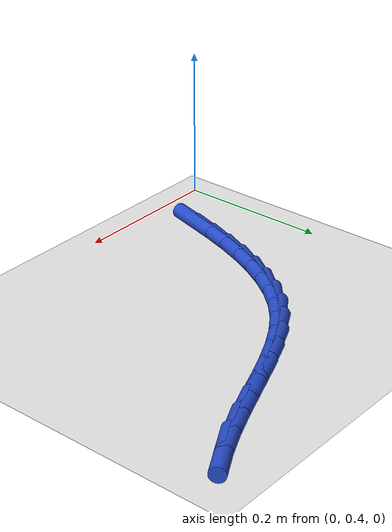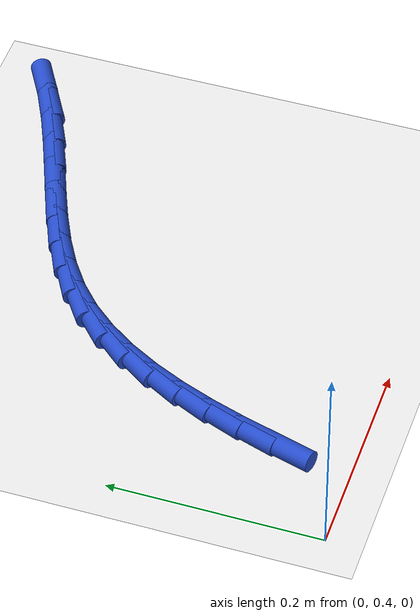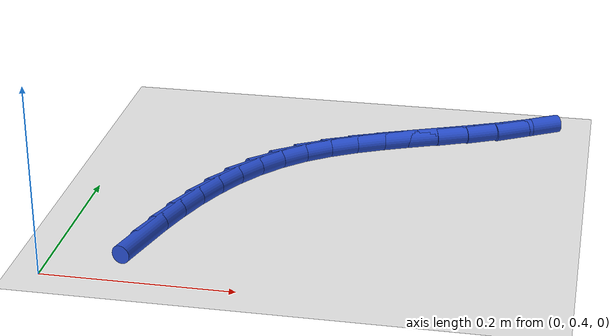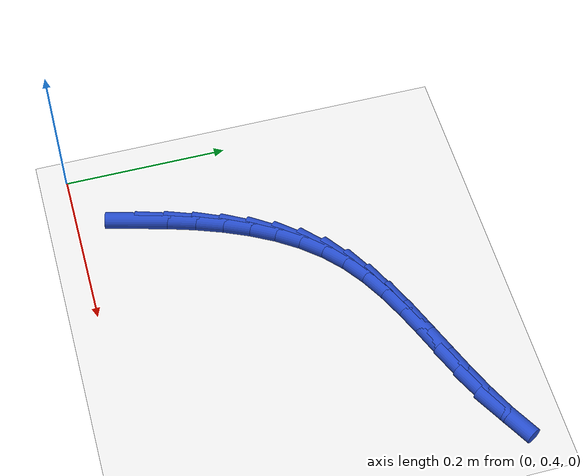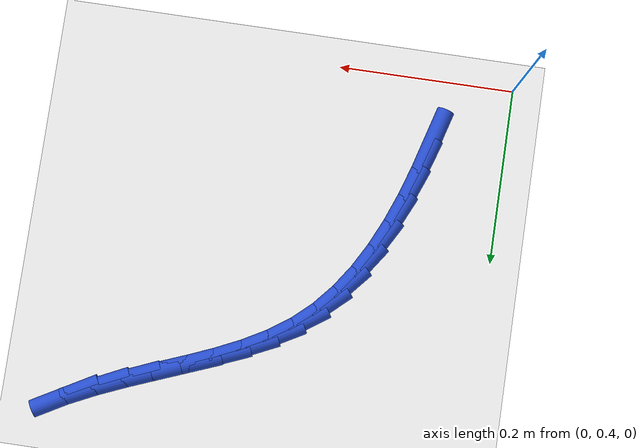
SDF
<sdf version="1.6">
 <world name="default">
  <model name="ground_plane">
   <static>1</static>
   <link name="link">
    <collision name="collision">
     <geometry><plane><normal>0 0 1</normal><size>100 100</size></plane></geometry>
     <surface><friction><ode><mu>100</mu><mu2>50</mu2></ode></friction></surface>
    </collision>
    <visual name="visual">
     <cast_shadows>0</cast_shadows>
     <geometry><plane><normal>0 0 1</normal><size>100 100</size></plane></geometry>
     <material>
      <script><uri>file://media/materials/scripts/gazebo.material</uri><name>Gazebo/WhiteGlow</name></script>
     </material>
    </visual>
   </link>
  </model>
  <model name="line">
   <link name="link_14">
    <pose>0.08461452594688063 0.4737982215466072 0.01 0 1.57 1.2978563678131796</pose>
    <collision name="collision">
     <geometry><cylinder><radius>0.01</radius><length>0.08</length></cylinder></geometry>
    </collision>
    <visual name="visual">
     <material>
      <script><name>Gazebo/Blue</name><uri>file://media/materials/scripts/gazebo.material</uri></script>
     </material>
     <geometry><cylinder><radius>0.01</radius><length>0.08</length></cylinder></geometry>
    </visual>
   </link>
   <link name="link_15">
    <pose>0.09419204224228851 0.5080126954400984 0.01 0 1.57 1.2565573028411883</pose>
    <collision name="collision">
     <geometry><cylinder><radius>0.01</radius><length>0.08</length></cylinder></geometry>
    </collision>
    <visual name="visual">
     <material>
      <script><name>Gazebo/Blue</name><uri>file://media/materials/scripts/gazebo.material</uri></script>
     </material>
     <geometry><cylinder><radius>0.01</radius><length>0.08</length></cylinder></geometry>
    </visual>
   </link>
   <link name="link_16">
    <pose>0.10497827255687715 0.5412002919966886 0.01 0 1.57 1.2042964606648994</pose>
    <collision name="collision">
     <geometry><cylinder><radius>0.01</radius><length>0.08</length></cylinder></geometry>
    </collision>
    <visual name="visual">
     <material>
      <script><name>Gazebo/Blue</name><uri>file://media/materials/scripts/gazebo.material</uri></script>
     </material>
     <geometry><cylinder><radius>0.01</radius><length>0.08</length></cylinder></geometry>
    </visual>
   </link>
   <link name="link_17">
    <pose>0.11720741300711682 0.5730601277220915 0.01 0 1.57 1.1396603528509097</pose>
    <collision name="collision">
     <geometry><cylinder><radius>0.01</radius><length>0.08</length></cylinder></geometry>
    </collision>
    <visual name="visual">
     <material>
      <script><name>Gazebo/Blue</name><uri>file://media/materials/scripts/gazebo.material</uri></script>
     </material>
     <geometry><cylinder><radius>0.01</radius><length>0.08</length></cylinder></geometry>
    </visual>
   </link>
   <link name="link_18">
    <pose>0.13111365970947786 0.6032913191220214 0.01 0 1.57 1.0611525408388207</pose>
    <collision name="collision">
     <geometry><cylinder><radius>0.01</radius><length>0.08</length></cylinder></geometry>
    </collision>
    <visual name="visual">
     <material>
      <script><name>Gazebo/Blue</name><uri>file://media/materials/scripts/gazebo.material</uri></script>
     </material>
     <geometry><cylinder><radius>0.01</radius><length>0.08</length></cylinder></geometry>
    </visual>
   </link>
   <link name="link_19">
    <pose>0.1469312087804306 0.6315929827021914 0.01 0 1.57 0.9674923032002456</pose>
    <collision name="collision">
     <geometry><cylinder><radius>0.01</radius><length>0.08</length></cylinder></geometry>
    </collision>
    <visual name="visual">
     <material>
      <script><name>Gazebo/Blue</name><uri>file://media/materials/scripts/gazebo.material</uri></script>
     </material>
     <geometry><cylinder><radius>0.01</radius><length>0.08</length></cylinder></geometry>
    </visual>
   </link>
   <link name="link_20">
    <pose>0.1648942563364455 0.6576642349683164 0.01 0 1.57 0.8581278723258284</pose>
    <collision name="collision">
     <geometry><cylinder><radius>0.01</radius><length>0.08</length></cylinder></geometry>
    </collision>
    <visual name="visual">
     <material>
      <script><name>Gazebo/Blue</name><uri>file://media/materials/scripts/gazebo.material</uri></script>
     </material>
     <geometry><cylinder><radius>0.01</radius><length>0.08</length></cylinder></geometry>
    </visual>
   </link>
   <link name="link_21">
    <pose>0.18523699849399264 0.6812041924261092 0.01 0 1.57 0.7340215848732757</pose>
    <collision name="collision">
     <geometry><cylinder><radius>0.01</radius><length>0.08</length></cylinder></geometry>
    </collision>
    <visual name="visual">
     <material>
      <script><name>Gazebo/Blue</name><uri>file://media/materials/scripts/gazebo.material</uri></script>
     </material>
     <geometry><cylinder><radius>0.01</radius><length>0.08</length></cylinder></geometry>
    </visual>
   </link>
   <link name="link_22">
    <pose>0.20819213259728347 0.7019139955489478 0.01 0 1.57 0.6095088317651606</pose>
    <collision name="collision">
     <geometry><cylinder><radius>0.01</radius><length>0.08</length></cylinder></geometry>
    </collision>
    <visual name="visual">
     <material>
      <script><name>Gazebo/Blue</name><uri>file://media/materials/scripts/gazebo.material</uri></script>
     </material>
     <geometry><cylinder><radius>0.01</radius><length>0.08</length></cylinder></geometry>
    </visual>
   </link>
   <link name="link_23">
    <pose>0.23378117936892437 0.7197799613276896 0.01 0 1.57 0.5107004905849902</pose>
    <collision name="collision">
     <geometry><cylinder><radius>0.01</radius><length>0.08</length></cylinder></geometry>
    </collision>
    <visual name="visual">
     <material>
      <script><name>Gazebo/Blue</name><uri>file://media/materials/scripts/gazebo.material</uri></script>
     </material>
     <geometry><cylinder><radius>0.01</radius><length>0.08</length></cylinder></geometry>
    </visual>
   </link>
   <link name="link_24">
    <pose>0.2615984139893411 0.7353653664322631 0.01 0 1.57 0.4402278030746432</pose>
    <collision name="collision">
     <geometry><cylinder><radius>0.01</radius><length>0.08</length></cylinder></geometry>
    </collision>
    <visual name="visual">
     <material>
      <script><name>Gazebo/Blue</name><uri>file://media/materials/scripts/gazebo.material</uri></script>
     </material>
     <geometry><cylinder><radius>0.01</radius><length>0.08</length></cylinder></geometry>
    </visual>
   </link>
   <link name="link_25">
    <pose>0.2911865486383726 0.7493031190894743 0.01 0 1.57 0.396094104812414</pose>
    <collision name="collision">
     <geometry><cylinder><radius>0.01</radius><length>0.08</length></cylinder></geometry>
    </collision>
    <visual name="visual">
     <material>
      <script><name>Gazebo/Blue</name><uri>file://media/materials/scripts/gazebo.material</uri></script>
     </material>
     <geometry><cylinder><radius>0.01</radius><length>0.08</length></cylinder></geometry>
    </visual>
   </link>
   <link name="link_26">
    <pose>0.3220882954958574 0.7622261275261286 0.01 0 1.57 0.37609965970879766</pose>
    <collision name="collision">
     <geometry><cylinder><radius>0.01</radius><length>0.08</length></cylinder></geometry>
    </collision>
    <visual name="visual">
     <material>
      <script><name>Gazebo/Blue</name><uri>file://media/materials/scripts/gazebo.material</uri></script>
     </material>
     <geometry><cylinder><radius>0.01</radius><length>0.08</length></cylinder></geometry>
    </visual>
   </link>
   <link name="link_27">
    <pose>0.3538463667416338 0.7747672999690318 0.01 0 1.57 0.3786123395951158</pose>
    <collision name="collision">
     <geometry><cylinder><radius>0.01</radius><length>0.08</length></cylinder></geometry>
    </collision>
    <visual name="visual">
     <material>
      <script><name>Gazebo/Blue</name><uri>file://media/materials/scripts/gazebo.material</uri></script>
     </material>
     <geometry><cylinder><radius>0.01</radius><length>0.08</length></cylinder></geometry>
    </visual>
   </link>
   <link name="link_28">
    <pose>0.3860034745555406 0.7875595446449892 0.01 0 1.57 0.402773046746959</pose>
    <collision name="collision">
     <geometry><cylinder><radius>0.01</radius><length>0.08</length></cylinder></geometry>
    </collision>
    <visual name="visual">
     <material>
      <script><name>Gazebo/Blue</name><uri>file://media/materials/scripts/gazebo.material</uri></script>
     </material>
     <geometry><cylinder><radius>0.01</radius><length>0.08</length></cylinder></geometry>
    </visual>
   </link>
   <link name="link_29">
    <pose>0.4181023311174161 0.8012357697808068 0.01 0 1.57 0.4483719509029207</pose>
    <collision name="collision">
     <geometry><cylinder><radius>0.01</radius><length>0.08</length></cylinder></geometry>
    </collision>
    <visual name="visual">
     <material>
      <script><name>Gazebo/Blue</name><uri>file://media/materials/scripts/gazebo.material</uri></script>
     </material>
     <geometry><cylinder><radius>0.01</radius><length>0.08</length></cylinder></geometry>
    </visual>
   </link>
   <link name="link_30">
    <pose>0.44968564860709925 0.8164288836032901 0.01 0 1.57 0.5154739808662969</pose>
    <collision name="collision">
     <geometry><cylinder><radius>0.01</radius><length>0.08</length></cylinder></geometry>
    </collision>
    <visual name="visual">
     <material>
      <script><name>Gazebo/Blue</name><uri>file://media/materials/scripts/gazebo.material</uri></script>
     </material>
     <geometry><cylinder><radius>0.01</radius><length>0.08</length></cylinder></geometry>
    </visual>
   </link>
  </model>
 </world>
</sdf>
